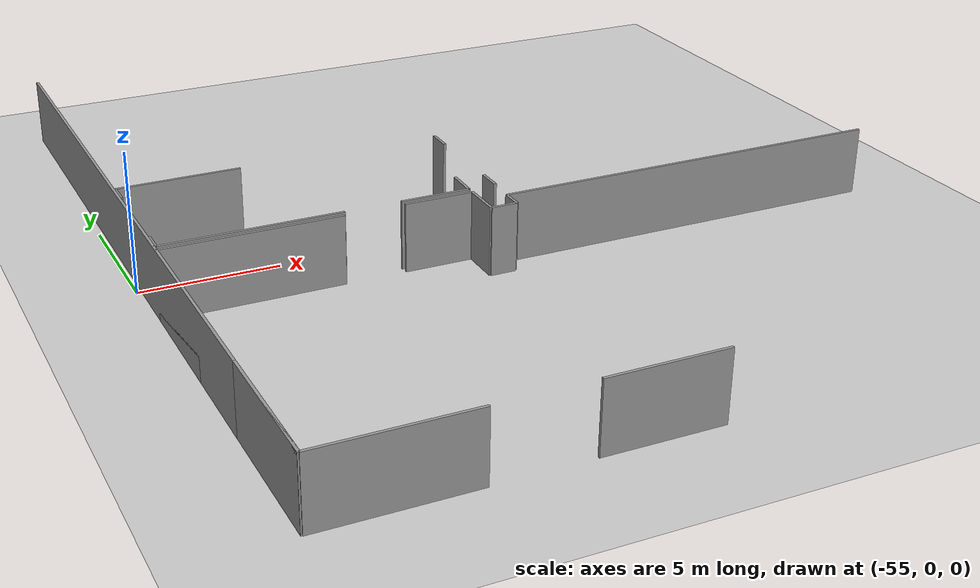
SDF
<sdf version="1.6">
 <world name="default">
  <model name="ground_plane">
   <static>1</static>
   <link name="link">
    <collision name="collision">
     <geometry><plane><normal>0 0 1</normal><size>100 100</size></plane></geometry>
     <surface><friction><ode><mu>100</mu><mu2>50</mu2></ode></friction></surface>
    </collision>
    <visual name="visual">
     <cast_shadows>0</cast_shadows>
     <geometry><plane><normal>0 0 1</normal><size>100 100</size></plane></geometry>
     <material>
      <script><uri>file://media/materials/scripts/gazebo.material</uri><name>Gazebo/Grey</name></script>
     </material>
    </visual>
   </link>
  </model>
  <model name="50056457">
   <static>1</static>
   <link name="Wall_11">
    <collision name="Wall_11_Collision">
     <geometry><box><size>4.1743814743 0.1 2.5</size></box></geometry>
     <pose>2.08719073715 0 1.25 0 0 0</pose>
    </collision>
    <visual name="Wall_11_Visual">
     <pose>2.08719073715 0 1.25 0 0 0</pose>
     <geometry><box><size>4.1743814743 0.1 2.5</size></box></geometry>
     <material>
      <script><uri>file://media/materials/scripts/gazebo.material</uri><name>Gazebo/Grey</name></script>
      <ambient>1 1 1 1</ambient>
     </material>
    </visual>
    <pose>12.8140060815 -30.0129591828 0 0 0 3.14159265359</pose>
   </link>
   <link name="Wall_12">
    <collision name="Wall_12_Collision">
     <geometry><box><size>5.26905126924 0.1 2.5</size></box></geometry>
     <pose>2.63452563462 0 1.25 0 0 0</pose>
    </collision>
    <visual name="Wall_12_Visual">
     <pose>2.63452563462 0 1.25 0 0 0</pose>
     <geometry><box><size>5.26905126924 0.1 2.5</size></box></geometry>
     <material>
      <script><uri>file://media/materials/scripts/gazebo.material</uri><name>Gazebo/Grey</name></script>
      <ambient>1 1 1 1</ambient>
     </material>
    </visual>
    <pose>5.26905126924 -30.0129591828 0 0 0 3.14159265359</pose>
   </link>
   <link name="Wall_13">
    <collision name="Wall_13_Collision">
     <geometry><box><size>5.03222855594 0.1 2.5</size></box></geometry>
     <pose>2.51611427797 0 1.25 0 0 0</pose>
    </collision>
    <visual name="Wall_13_Visual">
     <pose>2.51611427797 0 1.25 0 0 0</pose>
     <geometry><box><size>5.03222855594 0.1 2.5</size></box></geometry>
     <material>
      <script><uri>file://media/materials/scripts/gazebo.material</uri><name>Gazebo/Grey</name></script>
      <ambient>1 1 1 1</ambient>
     </material>
    </visual>
    <pose>0.0 -30.0129591828 0 0 0 1.57079632679</pose>
   </link>
   <link name="Wall_14">
    <collision name="Wall_14_Collision">
     <geometry><box><size>4.33903932646 0.1 2.5</size></box></geometry>
     <pose>2.16951966323 0 1.25 0 0 0</pose>
    </collision>
    <visual name="Wall_14_Visual">
     <pose>2.16951966323 0 1.25 0 0 0</pose>
     <geometry><box><size>4.33903932646 0.1 2.5</size></box></geometry>
     <material>
      <script><uri>file://media/materials/scripts/gazebo.material</uri><name>Gazebo/Grey</name></script>
      <ambient>1 1 1 1</ambient>
     </material>
    </visual>
    <pose>0.0 -21.5889821536 0 0 0 1.57079632679</pose>
   </link>
   <link name="Wall_15">
    <collision name="Wall_15_Collision">
     <geometry><box><size>6.34407053861 0.1 2.5</size></box></geometry>
     <pose>3.17203526931 0 1.25 0 0 0</pose>
    </collision>
    <visual name="Wall_15_Visual">
     <pose>3.17203526931 0 1.25 0 0 0</pose>
     <geometry><box><size>6.34407053861 0.1 2.5</size></box></geometry>
     <material>
      <script><uri>file://media/materials/scripts/gazebo.material</uri><name>Gazebo/Grey</name></script>
      <ambient>1 1 1 1</ambient>
     </material>
    </visual>
    <pose>0.0 -17.2499428271 0 0 0 0.0</pose>
   </link>
   <link name="Wall_16">
    <collision name="Wall_16_Collision">
     <geometry><box><size>2.48274226472 0.1 2.5</size></box></geometry>
     <pose>1.24137113236 0 1.25 0 0 0</pose>
    </collision>
    <visual name="Wall_16_Visual">
     <pose>1.24137113236 0 1.25 0 0 0</pose>
     <geometry><box><size>2.48274226472 0.1 2.5</size></box></geometry>
     <material>
      <script><uri>file://media/materials/scripts/gazebo.material</uri><name>Gazebo/Grey</name></script>
      <ambient>1 1 1 1</ambient>
     </material>
    </visual>
    <pose>8.50461194447 -17.2499428271 0 0 0 0.0</pose>
   </link>
   <link name="Wall_17">
    <collision name="Wall_17_Collision">
     <geometry><box><size>1.44922626056 0.1 2.5</size></box></geometry>
     <pose>0.724613130278 0 1.25 0 0 0</pose>
    </collision>
    <visual name="Wall_17_Visual">
     <pose>0.724613130278 0 1.25 0 0 0</pose>
     <geometry><box><size>1.44922626056 0.1 2.5</size></box></geometry>
     <material>
      <script><uri>file://media/materials/scripts/gazebo.material</uri><name>Gazebo/Grey</name></script>
      <ambient>1 1 1 1</ambient>
     </material>
    </visual>
    <pose>10.9873542092 -17.2499428271 0 0 0 -1.57079632679</pose>
   </link>
   <link name="Wall_18">
    <collision name="Wall_18_Collision">
     <geometry><box><size>0.944749836951 0.1 2.5</size></box></geometry>
     <pose>0.472374918476 0 1.25 0 0 0</pose>
    </collision>
    <visual name="Wall_18_Visual">
     <pose>0.472374918476 0 1.25 0 0 0</pose>
     <geometry><box><size>0.944749836951 0.1 2.5</size></box></geometry>
     <material>
      <script><uri>file://media/materials/scripts/gazebo.material</uri><name>Gazebo/Grey</name></script>
      <ambient>1 1 1 1</ambient>
     </material>
    </visual>
    <pose>10.9873542092 -18.6991690877 0 0 0 0.0</pose>
   </link>
   <link name="Wall_19">
    <collision name="Wall_19_Collision">
     <geometry><box><size>0.739605126077 0.1 2.5</size></box></geometry>
     <pose>0.369802563038 0 1.25 0 0 0</pose>
    </collision>
    <visual name="Wall_19_Visual">
     <pose>0.369802563038 0 1.25 0 0 0</pose>
     <geometry><box><size>0.739605126077 0.1 2.5</size></box></geometry>
     <material>
      <script><uri>file://media/materials/scripts/gazebo.material</uri><name>Gazebo/Grey</name></script>
      <ambient>1 1 1 1</ambient>
     </material>
    </visual>
    <pose>11.9321040461 -18.6991690877 0 0 0 1.57079632679</pose>
   </link>
   <link name="Wall_20">
    <collision name="Wall_20_Collision">
     <geometry><box><size>14.6838552298 0.1 2.5</size></box></geometry>
     <pose>7.34192761492 0 1.25 0 0 0</pose>
    </collision>
    <visual name="Wall_20_Visual">
     <pose>7.34192761492 0 1.25 0 0 0</pose>
     <geometry><box><size>14.6838552298 0.1 2.5</size></box></geometry>
     <material>
      <script><uri>file://media/materials/scripts/gazebo.material</uri><name>Gazebo/Grey</name></script>
      <ambient>1 1 1 1</ambient>
     </material>
    </visual>
    <pose>11.9321040461 -17.9595639616 0 0 0 0.0</pose>
   </link>
   <link name="Wall_25">
    <collision name="Wall_25_Collision">
     <geometry><box><size>2.50561141086 0.1 2.5</size></box></geometry>
     <pose>1.25280570543 0 1.25 0 0 0</pose>
    </collision>
    <visual name="Wall_25_Visual">
     <pose>1.25280570543 0 1.25 0 0 0</pose>
     <geometry><box><size>2.50561141086 0.1 2.5</size></box></geometry>
     <material>
      <script><uri>file://media/materials/scripts/gazebo.material</uri><name>Gazebo/Grey</name></script>
      <ambient>1 1 1 1</ambient>
     </material>
    </visual>
    <pose>10.9834579843 -16.9883875558 0 0 0 3.14159265359</pose>
   </link>
   <link name="Wall_26">
    <collision name="Wall_26_Collision">
     <geometry><box><size>6.38625140815 0.1 2.5</size></box></geometry>
     <pose>3.19312570407 0 1.25 0 0 0</pose>
    </collision>
    <visual name="Wall_26_Visual">
     <pose>3.19312570407 0 1.25 0 0 0</pose>
     <geometry><box><size>6.38625140815 0.1 2.5</size></box></geometry>
     <material>
      <script><uri>file://media/materials/scripts/gazebo.material</uri><name>Gazebo/Grey</name></script>
      <ambient>1 1 1 1</ambient>
     </material>
    </visual>
    <pose>6.45401184114 -16.9883875558 0 0 0 3.14159265359</pose>
   </link>
   <link name="Wall_27">
    <collision name="Wall_27_Collision">
     <geometry><box><size>0.786529225922 0.1 2.5</size></box></geometry>
     <pose>0.393264612961 0 1.25 0 0 0</pose>
    </collision>
    <visual name="Wall_27_Visual">
     <pose>0.393264612961 0 1.25 0 0 0</pose>
     <geometry><box><size>0.786529225922 0.1 2.5</size></box></geometry>
     <material>
      <script><uri>file://media/materials/scripts/gazebo.material</uri><name>Gazebo/Grey</name></script>
      <ambient>1 1 1 1</ambient>
     </material>
    </visual>
    <pose>0.0677604329892 -16.9883875558 0 0 0 1.57079632679</pose>
   </link>
   <link name="Wall_28">
    <collision name="Wall_28_Collision">
     <geometry><box><size>0.842770385303 0.1 2.5</size></box></geometry>
     <pose>0.421385192651 0 1.25 0 0 0</pose>
    </collision>
    <visual name="Wall_28_Visual">
     <pose>0.421385192651 0 1.25 0 0 0</pose>
     <geometry><box><size>0.842770385303 0.1 2.5</size></box></geometry>
     <material>
      <script><uri>file://media/materials/scripts/gazebo.material</uri><name>Gazebo/Grey</name></script>
      <ambient>1 1 1 1</ambient>
     </material>
    </visual>
    <pose>0.0677604329892 -12.8140060815 0 0 0 1.57079632679</pose>
   </link>
   <link name="Wall_29">
    <collision name="Wall_29_Collision">
     <geometry><box><size>4.45541787012 0.1 2.5</size></box></geometry>
     <pose>2.22770893506 0 1.25 0 0 0</pose>
    </collision>
    <visual name="Wall_29_Visual">
     <pose>2.22770893506 0 1.25 0 0 0</pose>
     <geometry><box><size>4.45541787012 0.1 2.5</size></box></geometry>
     <material>
      <script><uri>file://media/materials/scripts/gazebo.material</uri><name>Gazebo/Grey</name></script>
      <ambient>1 1 1 1</ambient>
     </material>
    </visual>
    <pose>0.0677604329892 -11.9712356962 0 0 0 0.0</pose>
   </link>
   <link name="Wall_32">
    <collision name="Wall_32_Collision">
     <geometry><box><size>1.13348544123 0.1 2.5</size></box></geometry>
     <pose>0.566742720617 0 1.25 0 0 0</pose>
    </collision>
    <visual name="Wall_32_Visual">
     <pose>0.566742720617 0 1.25 0 0 0</pose>
     <geometry><box><size>1.13348544123 0.1 2.5</size></box></geometry>
     <material>
      <script><uri>file://media/materials/scripts/gazebo.material</uri><name>Gazebo/Grey</name></script>
      <ambient>1 1 1 1</ambient>
     </material>
    </visual>
    <pose>11.0120867672 -15.8552637151 0 0 0 -1.59605631394</pose>
   </link>
   <link name="Wall_38">
    <collision name="Wall_38_Collision">
     <geometry><box><size>0.892743704632 0.1 2.5</size></box></geometry>
     <pose>0.446371852316 0 1.25 0 0 0</pose>
    </collision>
    <visual name="Wall_38_Visual">
     <pose>0.446371852316 0 1.25 0 0 0</pose>
     <geometry><box><size>0.892743704632 0.1 2.5</size></box></geometry>
     <material>
      <script><uri>file://media/materials/scripts/gazebo.material</uri><name>Gazebo/Grey</name></script>
      <ambient>1 1 1 1</ambient>
     </material>
    </visual>
    <pose>11.9983398694 -16.9711086454 0 0 0 1.57079632679</pose>
   </link>
   <link name="Wall_39">
    <collision name="Wall_39_Collision">
     <geometry><box><size>0.920186679993 0.1 2.5</size></box></geometry>
     <pose>0.460093339996 0 1.25 0 0 0</pose>
    </collision>
    <visual name="Wall_39_Visual">
     <pose>0.460093339996 0 1.25 0 0 0</pose>
     <geometry><box><size>0.920186679993 0.1 2.5</size></box></geometry>
     <material>
      <script><uri>file://media/materials/scripts/gazebo.material</uri><name>Gazebo/Grey</name></script>
      <ambient>1 1 1 1</ambient>
     </material>
    </visual>
    <pose>11.9983398694 -12.8914223762 0 0 0 1.57079632679</pose>
   </link>
   <link name="Wall_304">
    <collision name="Wall_304_Collision">
     <geometry><box><size>30.0363365322 0.1 2.5</size></box></geometry>
     <pose>15.0181682661 0 1.25 0 0 0</pose>
    </collision>
    <visual name="Wall_304_Visual">
     <pose>15.0181682661 0 1.25 0 0 0</pose>
     <geometry><box><size>30.0363365322 0.1 2.5</size></box></geometry>
     <material>
      <script><uri>file://media/materials/scripts/gazebo.material</uri><name>Gazebo/Grey</name></script>
      <ambient>1 1 1 1</ambient>
     </material>
    </visual>
    <pose>0.0 -30.0363365322 0 0 0 1.57079632679</pose>
   </link>
   <pose>-54.8 15.0363365322 0 0 0 0</pose>
  </model>
 </world>
</sdf>
